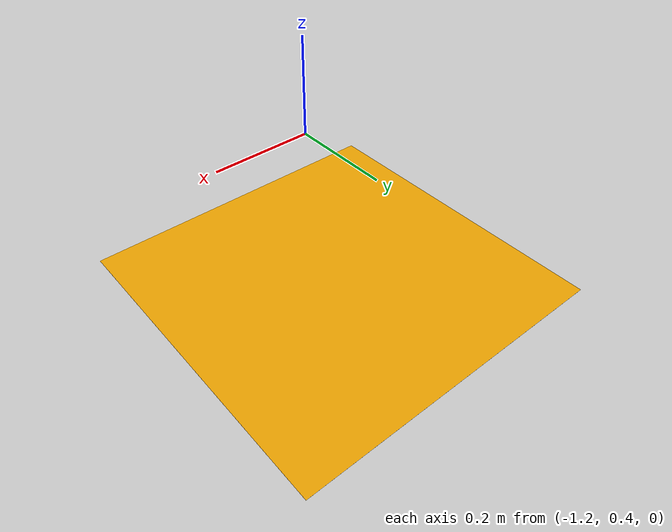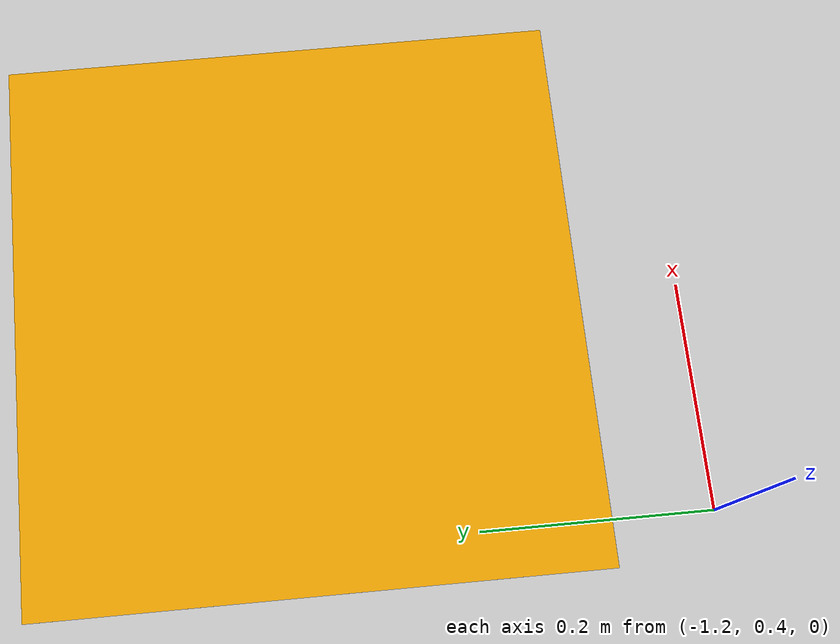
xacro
<?xml version="1.0"?>

<robot name="edufill_D2">

<xacro:macro name="edufill_D2" params="name">

	<link name="edufill_D2">
    		<inertial>
      			<origin xyz="-0.99 0.737 0" />
      			<mass value="10.0" />
      			<inertia  ixx="1.0" ixy="0.0"  ixz="0.0"  iyy="1.0"  iyz="0.0"  izz="1.0" />
    		</inertial>
    		<visual>
      			<origin xyz="-0.99 0.737 0"/>
      			<geometry>
        			<box size="0.5 0.5 0.0001" />
      			</geometry>
			<material name="surface">
				<texture filename="package://edufill_gazebo_world/common/worlds/D2.jpg"/>
			</material>
    		</visual>
    		<collision>
      			<origin xyz="-0.99 0.737 0"/>
      		<geometry>
        		<box size="0.5 0.5 0.0001" />
      		</geometry>
    		</collision>
  	</link>

</xacro:macro>

<xacro:edufill_D2 name="edufill_D2" />
</robot>
